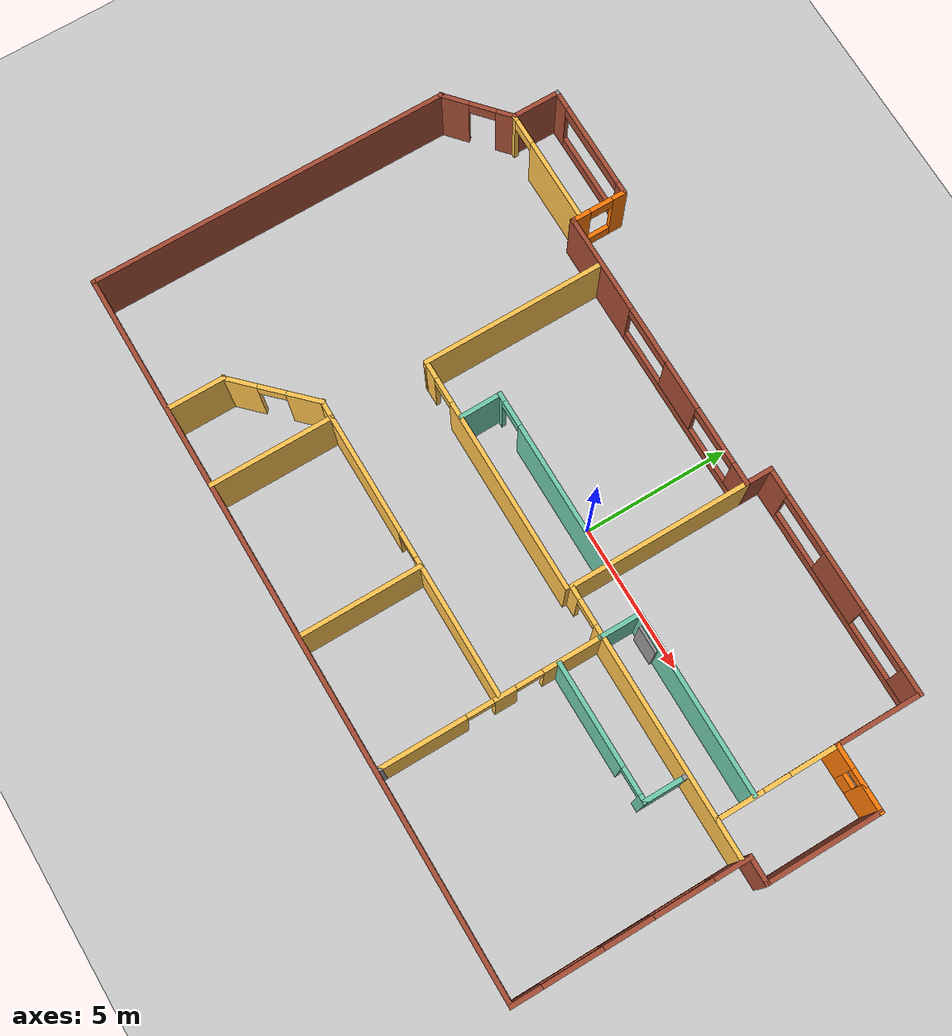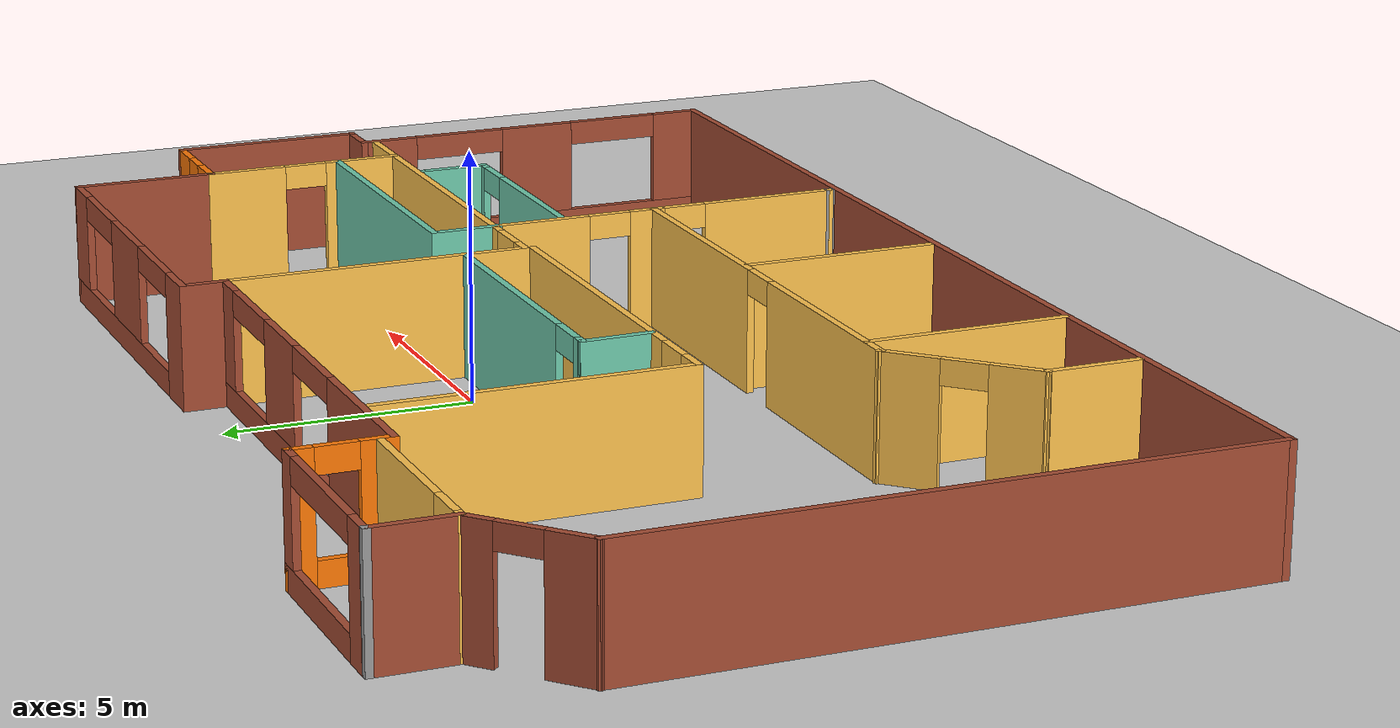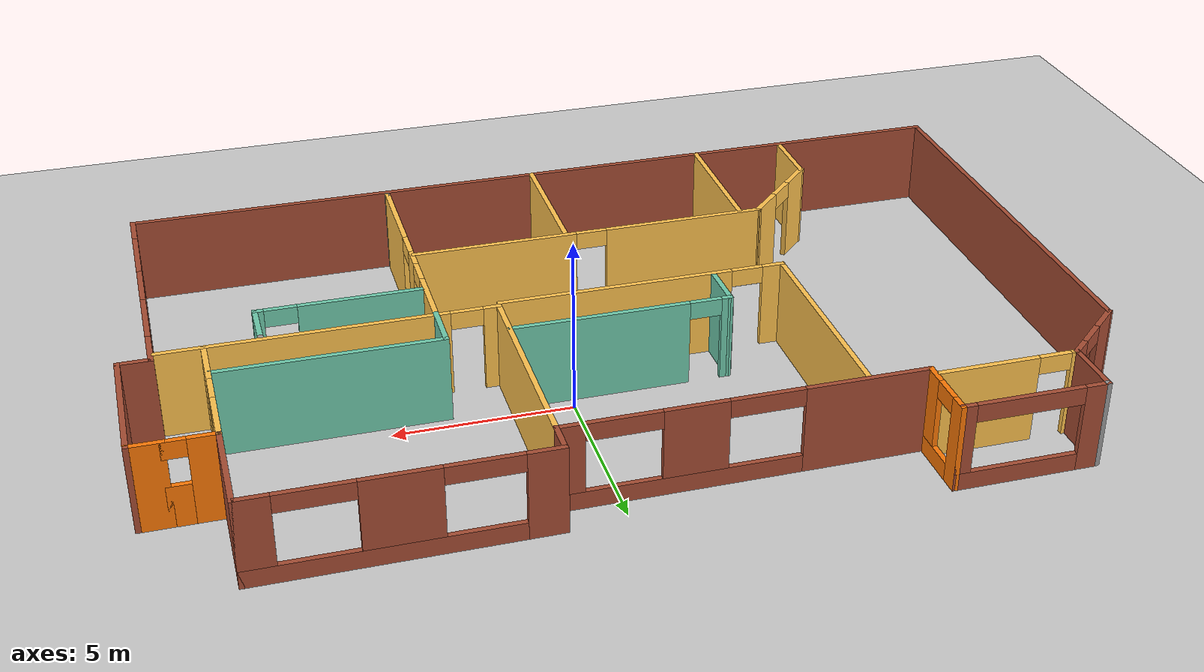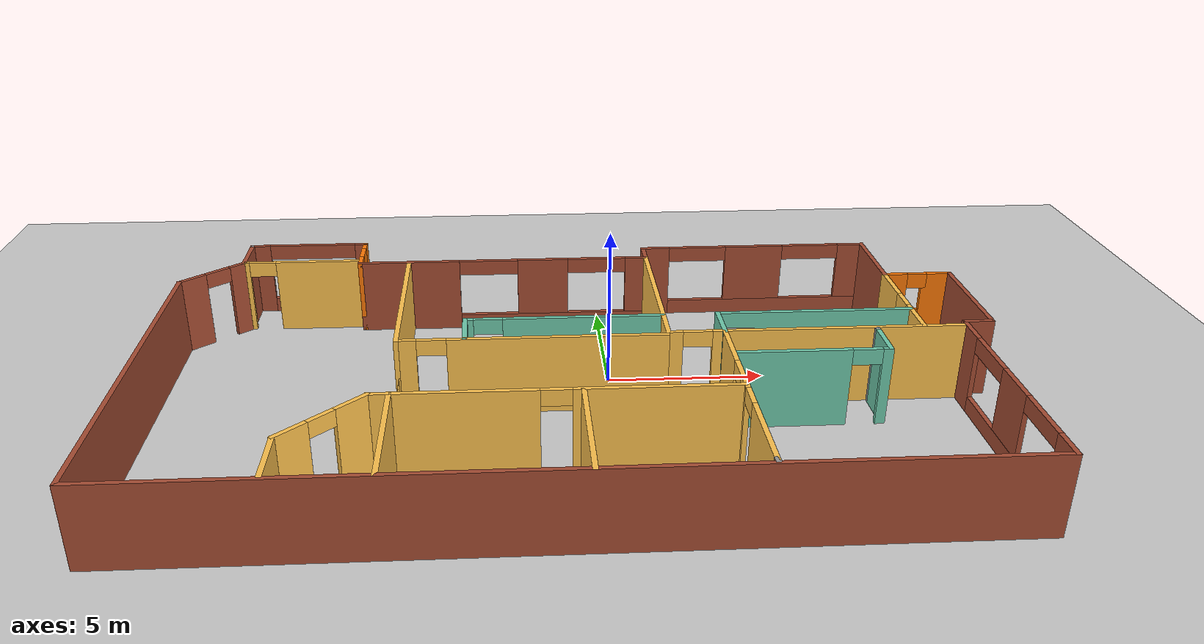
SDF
<sdf version="1.6">
 <world name="default">
  <model name="ground_plane">
   <static>1</static>
   <link name="link">
    <collision name="collision">
     <geometry><plane><normal>0 0 1</normal><size>100 100</size></plane></geometry>
     <surface><friction><ode><mu>100</mu><mu2>50</mu2></ode></friction></surface>
    </collision>
    <visual name="visual">
     <cast_shadows>0</cast_shadows>
     <geometry><plane><normal>0 0 1</normal><size>100 100</size></plane></geometry>
     <material>
      <script><uri>file://media/materials/scripts/gazebo.material</uri><name>Gazebo/Grey</name></script>
     </material>
    </visual>
   </link>
  </model>
  <model name="building">
   <pose>-1.18048 -1.54678 0 0 -0 0</pose>
   <link name="Door_9">
    <collision name="Door_9_Collision">
     <geometry><box><size>0.9 0.17 2</size></box></geometry>
     <pose>0 0 1 0 -0 0</pose>
    </collision>
    <visual name="Door_9_Visual">
     <pose>0 0 1 0 -0 0</pose>
     <geometry><box><size>0.9 0.17 2</size></box></geometry>
     <material>
      <script><uri>file://media/materials/scripts/gazebo.material</uri><name>Gazebo/Grey</name></script>
     </material>
    </visual>
    <pose>5.24635 1.02928 0 0 -0 0</pose>
   </link>
   <link name="Wall_10">
    <collision name="Wall_10_Collision">
     <geometry><box><size>1 0.15 2.5</size></box></geometry>
     <pose>0 0 1.25 0 -0 0</pose>
    </collision>
    <visual name="Wall_10_Visual">
     <pose>0 0 1.25 0 -0 0</pose>
     <geometry><box><size>1 0.15 2.5</size></box></geometry>
     <material>
      <script><uri>file://media/materials/scripts/gazebo.material</uri><name>Gazebo/Grey</name></script>
      <ambient>0.996078 0.47451 0.0196078 1</ambient>
     </material>
     <meta><layer>0</layer></meta>
    </visual>
    <pose>12.4404 3.92519 0 0 -0 0</pose>
   </link>
   <link name="Wall_11">
    <collision name="Wall_11_Collision">
     <geometry><box><size>4 0.15 2.5</size></box></geometry>
     <pose>0 0 1.25 0 -0 0</pose>
    </collision>
    <visual name="Wall_11_Visual">
     <pose>0 0 1.25 0 -0 0</pose>
     <geometry><box><size>4 0.15 2.5</size></box></geometry>
     <material>
      <script><uri>file://media/materials/scripts/gazebo.material</uri><name>Gazebo/Bricks</name></script>
      <ambient>0.996078 0.47451 0.0196078 1</ambient>
     </material>
     <meta><layer>0</layer></meta>
    </visual>
    <pose>12.8654 2.00019 0 0 0 -1.5708</pose>
   </link>
   <link name="Wall_12">
    <collision name="Wall_12_Collision">
     <geometry><box><size>1 0.15 2.5</size></box></geometry>
     <pose>0 0 1.25 0 -0 0</pose>
    </collision>
    <visual name="Wall_12_Visual">
     <pose>0 0 1.25 0 -0 0</pose>
     <geometry><box><size>1 0.15 2.5</size></box></geometry>
     <material>
      <script><uri>file://media/materials/scripts/gazebo.material</uri><name>Gazebo/Bricks</name></script>
      <ambient>0.996078 0.47451 0.0196078 1</ambient>
     </material>
     <meta><layer>0</layer></meta>
    </visual>
    <pose>12.4404 0.075189 0 0 -0 3.14159</pose>
   </link>
   <link name="Wall_13">
    <pose>12.0154 -3.84981 0 0 0 -1.5708</pose>
    <visual name="Wall_13_Visual_0">
     <pose>-3.35895 0 1.25 0 -0 0</pose>
     <geometry><box><size>1.28209 0.15 2.5</size></box></geometry>
     <material>
      <script><uri>file://media/materials/scripts/gazebo.material</uri><name>Gazebo/Bricks</name></script>
      <ambient>0.996078 0.47451 0.0196078 1</ambient>
     </material>
     <meta><layer>0</layer></meta>
    </visual>
    <collision name="Wall_13_Collision_0">
     <geometry><box><size>1.28209 0.15 2.5</size></box></geometry>
     <pose>-3.35895 0 1.25 0 -0 0</pose>
    </collision>
    <visual name="Wall_13_Visual_1">
     <pose>0.641045 0 0.25 0 -0 0</pose>
     <geometry><box><size>6.71791 0.15 0.5</size></box></geometry>
     <material>
      <script><uri>file://media/materials/scripts/gazebo.material</uri><name>Gazebo/Bricks</name></script>
      <ambient>0.996078 0.47451 0.0196078 1</ambient>
     </material>
     <meta><layer>0</layer></meta>
    </visual>
    <collision name="Wall_13_Collision_1">
     <geometry><box><size>6.71791 0.15 0.5</size></box></geometry>
     <pose>0.641045 0 0.25 0 -0 0</pose>
    </collision>
    <visual name="Wall_13_Visual_2">
     <pose>0.102981 0 1.5 0 -0 0</pose>
     <geometry><box><size>1.64178 0.15 2</size></box></geometry>
     <material>
      <script><uri>file://media/materials/scripts/gazebo.material</uri><name>Gazebo/Bricks</name></script>
      <ambient>0.996078 0.47451 0.0196078 1</ambient>
     </material>
     <meta><layer>0</layer></meta>
    </visual>
    <collision name="Wall_13_Collision_2">
     <geometry><box><size>1.64178 0.15 2</size></box></geometry>
     <pose>0.102981 0 1.5 0 -0 0</pose>
    </collision>
    <visual name="Wall_13_Visual_3">
     <pose>3.46194 0 1.5 0 -0 0</pose>
     <geometry><box><size>1.07613 0.15 2</size></box></geometry>
     <material>
      <script><uri>file://media/materials/scripts/gazebo.material</uri><name>Gazebo/Bricks</name></script>
      <ambient>0.996078 0.47451 0.0196078 1</ambient>
     </material>
     <meta><layer>0</layer></meta>
    </visual>
    <collision name="Wall_13_Collision_3">
     <geometry><box><size>1.07613 0.15 2</size></box></geometry>
     <pose>3.46194 0 1.5 0 -0 0</pose>
    </collision>
    <visual name="Wall_13_Visual_4">
     <pose>-1.71791 0 2.25 0 -0 0</pose>
     <geometry><box><size>2 0.15 0.5</size></box></geometry>
     <material>
      <script><uri>file://media/materials/scripts/gazebo.material</uri><name>Gazebo/Bricks</name></script>
      <ambient>0.996078 0.47451 0.0196078 1</ambient>
     </material>
     <meta><layer>0</layer></meta>
    </visual>
    <collision name="Wall_13_Collision_4">
     <geometry><box><size>2 0.15 0.5</size></box></geometry>
     <pose>-1.71791 0 2.25 0 -0 0</pose>
    </collision>
    <visual name="Wall_13_Visual_5">
     <pose>1.92387 0 2.25 0 -0 0</pose>
     <geometry><box><size>2 0.15 0.5</size></box></geometry>
     <material>
      <script><uri>file://media/materials/scripts/gazebo.material</uri><name>Gazebo/Bricks</name></script>
      <ambient>0.996078 0.47451 0.0196078 1</ambient>
     </material>
     <meta><layer>0</layer></meta>
    </visual>
    <collision name="Wall_13_Collision_5">
     <geometry><box><size>2 0.15 0.5</size></box></geometry>
     <pose>1.92387 0 2.25 0 -0 0</pose>
    </collision>
   </link>
   <link name="Wall_14">
    <collision name="Wall_14_Collision">
     <geometry><box><size>25 0.15 2.5</size></box></geometry>
     <pose>0 0 1.25 0 -0 0</pose>
    </collision>
    <visual name="Wall_14_Visual">
     <pose>0 0 1.25 0 -0 0</pose>
     <geometry><box><size>25 0.15 2.5</size></box></geometry>
     <material>
      <script><uri>file://media/materials/scripts/gazebo.material</uri><name>Gazebo/Bricks</name></script>
      <ambient>0.996078 0.47451 0.0196078 1</ambient>
     </material>
     <meta><layer>0</layer></meta>
    </visual>
    <pose>-0.409386 -7.775 0 0 0 -3.14158</pose>
   </link>
   <link name="Wall_15">
    <collision name="Wall_15_Collision">
     <geometry><box><size>12.5 0.15 2.5</size></box></geometry>
     <pose>0 0 1.25 0 -0 0</pose>
    </collision>
    <visual name="Wall_15_Visual">
     <pose>0 0 1.25 0 -0 0</pose>
     <geometry><box><size>12.5 0.15 2.5</size></box></geometry>
     <material>
      <script><uri>file://media/materials/scripts/gazebo.material</uri><name>Gazebo/Bricks</name></script>
      <ambient>0.996078 0.47451 0.0196078 1</ambient>
     </material>
     <meta><layer>0</layer></meta>
    </visual>
    <pose>-12.8344 -1.6 0 0 -0 1.57083</pose>
   </link>
   <link name="Wall_18">
    <collision name="Wall_18_Collision">
     <geometry><box><size>0.15 0.15 2.5</size></box></geometry>
     <pose>0 0 1.25 0 -0 0</pose>
    </collision>
    <visual name="Wall_18_Visual">
     <pose>0 0 1.25 0 -0 0</pose>
     <geometry><box><size>0.15 0.15 2.5</size></box></geometry>
     <material>
      <script><uri>file://media/materials/scripts/gazebo.material</uri><name>Gazebo/Grey</name></script>
      <ambient>1 1 1 1</ambient>
     </material>
     <meta><layer>0</layer></meta>
    </visual>
    <pose>-11.0156 7.76619 0 0 -0 0</pose>
   </link>
   <link name="Wall_2">
    <pose>-8.95963 7.77519 0 0 -0 0</pose>
    <visual name="Wall_2_Visual_0">
     <pose>-1.7146 0 1.25 0 -0 0</pose>
     <geometry><box><size>0.570799 0.15 2.5</size></box></geometry>
     <material>
      <script><uri>file://media/materials/scripts/gazebo.material</uri><name>Gazebo/Bricks</name></script>
      <ambient>0.996078 0.47451 0.0196078 1</ambient>
     </material>
     <meta><layer>0</layer></meta>
    </visual>
    <collision name="Wall_2_Collision_0">
     <geometry><box><size>0.570799 0.15 2.5</size></box></geometry>
     <pose>-1.7146 0 1.25 0 -0 0</pose>
    </collision>
    <visual name="Wall_2_Visual_1">
     <pose>0.285399 0 0.25 0 -0 0</pose>
     <geometry><box><size>3.4292 0.15 0.5</size></box></geometry>
     <material>
      <script><uri>file://media/materials/scripts/gazebo.material</uri><name>Gazebo/Bricks</name></script>
      <ambient>0.996078 0.47451 0.0196078 1</ambient>
     </material>
     <meta><layer>0</layer></meta>
    </visual>
    <collision name="Wall_2_Collision_1">
     <geometry><box><size>3.4292 0.15 0.5</size></box></geometry>
     <pose>0.285399 0 0.25 0 -0 0</pose>
    </collision>
    <visual name="Wall_2_Visual_2">
     <pose>1.7754 0 1.5 0 -0 0</pose>
     <geometry><box><size>0.449201 0.15 2</size></box></geometry>
     <material>
      <script><uri>file://media/materials/scripts/gazebo.material</uri><name>Gazebo/Bricks</name></script>
      <ambient>0.996078 0.47451 0.0196078 1</ambient>
     </material>
     <meta><layer>0</layer></meta>
    </visual>
    <collision name="Wall_2_Collision_2">
     <geometry><box><size>0.449201 0.15 2</size></box></geometry>
     <pose>1.7754 0 1.5 0 -0 0</pose>
    </collision>
    <visual name="Wall_2_Visual_3">
     <pose>0.060799 0 2.25 0 -0 0</pose>
     <geometry><box><size>2.98 0.15 0.5</size></box></geometry>
     <material>
      <script><uri>file://media/materials/scripts/gazebo.material</uri><name>Gazebo/Bricks</name></script>
      <ambient>0.996078 0.47451 0.0196078 1</ambient>
     </material>
     <meta><layer>0</layer></meta>
    </visual>
    <collision name="Wall_2_Collision_3">
     <geometry><box><size>2.98 0.15 0.5</size></box></geometry>
     <pose>0.060799 0 2.25 0 -0 0</pose>
    </collision>
   </link>
   <link name="Wall_21">
    <collision name="Wall_21_Collision">
     <geometry><box><size>1.72887 0.15 2.5</size></box></geometry>
     <pose>0 0 1.25 0 -0 0</pose>
    </collision>
    <visual name="Wall_21_Visual">
     <pose>0 0 1.25 0 -0 0</pose>
     <geometry><box><size>1.72887 0.15 2.5</size></box></geometry>
     <material>
      <script><uri>file://media/materials/scripts/gazebo.material</uri><name>Gazebo/Bricks</name></script>
      <ambient>0.996078 0.47451 0.0196078 1</ambient>
     </material>
     <meta><layer>0</layer></meta>
    </visual>
    <pose>-11.0156 6.97669 0 0 0 -1.5708</pose>
   </link>
   <link name="Wall_22">
    <pose>-11.9251 5.38119 0 0 0 -2.41645</pose>
    <visual name="Wall_22_Visual_0">
     <pose>-0.957133 0 1.25 0 -0 0</pose>
     <geometry><box><size>0.665888 0.15 2.5</size></box></geometry>
     <material>
      <script><uri>file://media/materials/scripts/gazebo.material</uri><name>Gazebo/Bricks</name></script>
      <ambient>0.996078 0.47451 0.0196078 1</ambient>
     </material>
     <meta><layer>0</layer></meta>
    </visual>
    <collision name="Wall_22_Collision_0">
     <geometry><box><size>0.665888 0.15 2.5</size></box></geometry>
     <pose>-0.957133 0 1.25 0 -0 0</pose>
    </collision>
    <visual name="Wall_22_Visual_1">
     <pose>0.782944 0 1.25 0 -0 0</pose>
     <geometry><box><size>1.01427 0.15 2.5</size></box></geometry>
     <material>
      <script><uri>file://media/materials/scripts/gazebo.material</uri><name>Gazebo/Bricks</name></script>
      <ambient>0.996078 0.47451 0.0196078 1</ambient>
     </material>
     <meta><layer>0</layer></meta>
    </visual>
    <collision name="Wall_22_Collision_1">
     <geometry><box><size>1.01427 0.15 2.5</size></box></geometry>
     <pose>0.782944 0 1.25 0 -0 0</pose>
    </collision>
    <visual name="Wall_22_Visual_2">
     <pose>-0.174189 0 2.25 0 -0 0</pose>
     <geometry><box><size>0.9 0.15 0.5</size></box></geometry>
     <material>
      <script><uri>file://media/materials/scripts/gazebo.material</uri><name>Gazebo/Bricks</name></script>
      <ambient>0.996078 0.47451 0.0196078 1</ambient>
     </material>
     <meta><layer>0</layer></meta>
    </visual>
    <collision name="Wall_22_Collision_2">
     <geometry><box><size>0.9 0.15 0.5</size></box></geometry>
     <pose>-0.174189 0 2.25 0 -0 0</pose>
    </collision>
   </link>
   <link name="Wall_24">
    <collision name="Wall_24_Collision">
     <geometry><box><size>6.25 0.15 2.5</size></box></geometry>
     <pose>0 0 1.25 0 -0 0</pose>
    </collision>
    <visual name="Wall_24_Visual">
     <pose>0 0 1.25 0 -0 0</pose>
     <geometry><box><size>6.25 0.15 2.5</size></box></geometry>
     <material>
      <script><uri>file://media/materials/scripts/gazebo.material</uri><name>Gazebo/Grey</name></script>
      <ambient>1 0.764706 0.305882 1</ambient>
     </material>
     <meta><layer>0</layer></meta>
    </visual>
    <pose>2.81537 2.87519 0 0 0 -1.5708</pose>
   </link>
   <link name="Wall_25">
    <pose>7.36561 -0.174999 0 0 0 -4.1e-05</pose>
    <visual name="Wall_25_Visual_0">
     <pose>-4.36759 0 1.25 0 -0 0</pose>
     <geometry><box><size>0.514816 0.15 2.5</size></box></geometry>
     <material>
      <script><uri>file://media/materials/scripts/gazebo.material</uri><name>Gazebo/Grey</name></script>
      <ambient>1 0.764706 0.305882 1</ambient>
     </material>
     <meta><layer>0</layer></meta>
    </visual>
    <collision name="Wall_25_Collision_0">
     <geometry><box><size>0.514816 0.15 2.5</size></box></geometry>
     <pose>-4.36759 0 1.25 0 -0 0</pose>
    </collision>
    <visual name="Wall_25_Visual_1">
     <pose>0.707408 0 1.25 0 -0 0</pose>
     <geometry><box><size>7.83518 0.15 2.5</size></box></geometry>
     <material>
      <script><uri>file://media/materials/scripts/gazebo.material</uri><name>Gazebo/Grey</name></script>
      <ambient>1 0.764706 0.305882 1</ambient>
     </material>
     <meta><layer>0</layer></meta>
    </visual>
    <collision name="Wall_25_Collision_1">
     <geometry><box><size>7.83518 0.15 2.5</size></box></geometry>
     <pose>0.707408 0 1.25 0 -0 0</pose>
    </collision>
    <visual name="Wall_25_Visual_2">
     <pose>-3.66018 0 2.25 0 -0 0</pose>
     <geometry><box><size>0.9 0.15 0.5</size></box></geometry>
     <material>
      <script><uri>file://media/materials/scripts/gazebo.material</uri><name>Gazebo/Grey</name></script>
      <ambient>1 0.764706 0.305882 1</ambient>
     </material>
     <meta><layer>0</layer></meta>
    </visual>
    <collision name="Wall_25_Collision_2">
     <geometry><box><size>0.9 0.15 0.5</size></box></geometry>
     <pose>-3.66018 0 2.25 0 -0 0</pose>
    </collision>
   </link>
   <link name="Wall_27">
    <collision name="Wall_27_Collision">
     <geometry><box><size>6.25 0.15 2.5</size></box></geometry>
     <pose>0 0 1.25 0 -0 0</pose>
    </collision>
    <visual name="Wall_27_Visual">
     <pose>0 0 1.25 0 -0 0</pose>
     <geometry><box><size>6.25 0.15 2.5</size></box></geometry>
     <material>
      <script><uri>file://media/materials/scripts/gazebo.material</uri><name>Gazebo/Grey</name></script>
      <ambient>1 0.764706 0.305882 1</ambient>
     </material>
     <meta><layer>0</layer></meta>
    </visual>
    <pose>-5.35916 2.72749 0 0 0 -1.5708</pose>
   </link>
   <link name="Wall_28">
    <pose>-1.29552 -0.32251 0 0 -0 0</pose>
    <visual name="Wall_28_Visual_0">
     <pose>-3.79542 0 1.25 0 -0 0</pose>
     <geometry><box><size>0.659156 0.15 2.5</size></box></geometry>
     <material>
      <script><uri>file://media/materials/scripts/gazebo.material</uri><name>Gazebo/Grey</name></script>
      <ambient>1 0.764706 0.305882 1</ambient>
     </material>
     <meta><layer>0</layer></meta>
    </visual>
    <collision name="Wall_28_Collision_0">
     <geometry><box><size>0.659156 0.15 2.5</size></box></geometry>
     <pose>-3.79542 0 1.25 0 -0 0</pose>
    </collision>
    <visual name="Wall_28_Visual_1">
     <pose>0.779578 0 1.25 0 -0 0</pose>
     <geometry><box><size>6.69084 0.15 2.5</size></box></geometry>
     <material>
      <script><uri>file://media/materials/scripts/gazebo.material</uri><name>Gazebo/Grey</name></script>
      <ambient>1 0.764706 0.305882 1</ambient>
     </material>
     <meta><layer>0</layer></meta>
    </visual>
    <collision name="Wall_28_Collision_1">
     <geometry><box><size>6.69084 0.15 2.5</size></box></geometry>
     <pose>0.779578 0 1.25 0 -0 0</pose>
    </collision>
    <visual name="Wall_28_Visual_2">
     <pose>-3.01584 0 2.25 0 -0 0</pose>
     <geometry><box><size>0.9 0.15 0.5</size></box></geometry>
     <material>
      <script><uri>file://media/materials/scripts/gazebo.material</uri><name>Gazebo/Grey</name></script>
      <ambient>1 0.764706 0.305882 1</ambient>
     </material>
     <meta><layer>0</layer></meta>
    </visual>
    <collision name="Wall_28_Collision_2">
     <geometry><box><size>0.9 0.15 0.5</size></box></geometry>
     <pose>-3.01584 0 2.25 0 -0 0</pose>
    </collision>
   </link>
   <link name="Wall_3">
    <pose>-7.03463 6.85019 0 0 0 -1.5708</pose>
    <visual name="Wall_3_Visual_0">
     <pose>-0.742492 0 1.25 0 -0 0</pose>
     <geometry><box><size>0.515016 0.15 2.5</size></box></geometry>
     <material>
      <script><uri>file://media/materials/scripts/gazebo.material</uri><name>Gazebo/Grey</name></script>
      <ambient>0.996078 0.47451 0.0196078 1</ambient>
     </material>
     <meta><layer>0</layer></meta>
    </visual>
    <collision name="Wall_3_Collision_0">
     <geometry><box><size>0.515016 0.15 2.5</size></box></geometry>
     <pose>-0.742492 0 1.25 0 -0 0</pose>
    </collision>
    <visual name="Wall_3_Visual_1">
     <pose>0.257508 0 0.25 0 -0 0</pose>
     <geometry><box><size>1.48498 0.15 0.5</size></box></geometry>
     <material>
      <script><uri>file://media/materials/scripts/gazebo.material</uri><name>Gazebo/Grey</name></script>
      <ambient>0.996078 0.47451 0.0196078 1</ambient>
     </material>
     <meta><layer>0</layer></meta>
    </visual>
    <collision name="Wall_3_Collision_1">
     <geometry><box><size>1.48498 0.15 0.5</size></box></geometry>
     <pose>0.257508 0 0.25 0 -0 0</pose>
    </collision>
    <visual name="Wall_3_Visual_2">
     <pose>0.657508 0 1.5 0 -0 0</pose>
     <geometry><box><size>0.684984 0.15 2</size></box></geometry>
     <material>
      <script><uri>file://media/materials/scripts/gazebo.material</uri><name>Gazebo/Grey</name></script>
      <ambient>0.996078 0.47451 0.0196078 1</ambient>
     </material>
     <meta><layer>0</layer></meta>
    </visual>
    <collision name="Wall_3_Collision_2">
     <geometry><box><size>0.684984 0.15 2</size></box></geometry>
     <pose>0.657508 0 1.5 0 -0 0</pose>
    </collision>
    <visual name="Wall_3_Visual_3">
     <pose>-0.084984 0 2.25 0 -0 0</pose>
     <geometry><box><size>0.8 0.15 0.5</size></box></geometry>
     <material>
      <script><uri>file://media/materials/scripts/gazebo.material</uri><name>Gazebo/Grey</name></script>
      <ambient>0.996078 0.47451 0.0196078 1</ambient>
     </material>
     <meta><layer>0</layer></meta>
    </visual>
    <collision name="Wall_3_Collision_3">
     <geometry><box><size>0.8 0.15 0.5</size></box></geometry>
     <pose>-0.084984 0 2.25 0 -0 0</pose>
    </collision>
   </link>
   <link name="Wall_30">
    <pose>4.52737 -3.91681 0 0 0 -1.5708</pose>
    <visual name="Wall_30_Visual_0">
     <pose>-2.73062 0 1.25 0 -0 0</pose>
     <geometry><box><size>2.03875 0.15 2.5</size></box></geometry>
     <material>
      <script><uri>file://media/materials/scripts/gazebo.material</uri><name>Gazebo/Grey</name></script>
      <ambient>1 0.764706 0.305882 1</ambient>
     </material>
     <meta><layer>0</layer></meta>
    </visual>
    <collision name="Wall_30_Collision_0">
     <geometry><box><size>2.03875 0.15 2.5</size></box></geometry>
     <pose>-2.73062 0 1.25 0 -0 0</pose>
    </collision>
    <visual name="Wall_30_Visual_1">
     <pose>-0.433439 0 1.25 0 -0 0</pose>
     <geometry><box><size>0.755616 0.15 2.5</size></box></geometry>
     <material>
      <script><uri>file://media/materials/scripts/gazebo.material</uri><name>Gazebo/Grey</name></script>
      <ambient>1 0.764706 0.305882 1</ambient>
     </material>
     <meta><layer>0</layer></meta>
    </visual>
    <collision name="Wall_30_Collision_1">
     <geometry><box><size>0.755616 0.15 2.5</size></box></geometry>
     <pose>-0.433439 0 1.25 0 -0 0</pose>
    </collision>
    <visual name="Wall_30_Visual_2">
     <pose>2.29718 0 1.25 0 -0 0</pose>
     <geometry><box><size>2.90563 0.15 2.5</size></box></geometry>
     <material>
      <script><uri>file://media/materials/scripts/gazebo.material</uri><name>Gazebo/Grey</name></script>
      <ambient>1 0.764706 0.305882 1</ambient>
     </material>
     <meta><layer>0</layer></meta>
    </visual>
    <collision name="Wall_30_Collision_2">
     <geometry><box><size>2.90563 0.15 2.5</size></box></geometry>
     <pose>2.29718 0 1.25 0 -0 0</pose>
    </collision>
    <visual name="Wall_30_Visual_3">
     <pose>-1.26125 0 2.25 0 -0 0</pose>
     <geometry><box><size>0.9 0.15 0.5</size></box></geometry>
     <material>
      <script><uri>file://media/materials/scripts/gazebo.material</uri><name>Gazebo/Grey</name></script>
      <ambient>1 0.764706 0.305882 1</ambient>
     </material>
     <meta><layer>0</layer></meta>
    </visual>
    <collision name="Wall_30_Collision_3">
     <geometry><box><size>0.9 0.15 0.5</size></box></geometry>
     <pose>-1.26125 0 2.25 0 -0 0</pose>
    </collision>
    <visual name="Wall_30_Visual_4">
     <pose>0.394369 0 2.25 0 -0 0</pose>
     <geometry><box><size>0.9 0.15 0.5</size></box></geometry>
     <material>
      <script><uri>file://media/materials/scripts/gazebo.material</uri><name>Gazebo/Grey</name></script>
      <ambient>1 0.764706 0.305882 1</ambient>
     </material>
     <meta><layer>0</layer></meta>
    </visual>
    <collision name="Wall_30_Collision_4">
     <geometry><box><size>0.9 0.15 0.5</size></box></geometry>
     <pose>0.394369 0 2.25 0 -0 0</pose>
    </collision>
   </link>
   <link name="Wall_32">
    <collision name="Wall_32_Collision">
     <geometry><box><size>0.25 0.15 2.5</size></box></geometry>
     <pose>0 0 1.25 0 -0 0</pose>
    </collision>
    <visual name="Wall_32_Visual">
     <pose>0 0 1.25 0 -0 0</pose>
     <geometry><box><size>0.25 0.15 2.5</size></box></geometry>
     <material>
      <script><uri>file://media/materials/scripts/gazebo.material</uri><name>Gazebo/Grey</name></script>
      <ambient>1 1 1 1</ambient>
     </material>
     <meta><layer>0</layer></meta>
    </visual>
    <pose>4.52743 -7.64189 0 0 0 -1.56959</pose>
   </link>
   <link name="Wall_34">
    <pose>-0.701627 -3.64881 0 0 -0 3.14159</pose>
    <visual name="Wall_34_Visual_0">
     <pose>-2.83618 0 1.25 0 -0 0</pose>
     <geometry><box><size>4.82764 0.15 2.5</size></box></geometry>
     <material>
      <script><uri>file://media/materials/scripts/gazebo.material</uri><name>Gazebo/Grey</name></script>
      <ambient>1 0.764706 0.305882 1</ambient>
     </material>
     <meta><layer>0</layer></meta>
    </visual>
    <collision name="Wall_34_Collision_0">
     <geometry><box><size>4.82764 0.15 2.5</size></box></geometry>
     <pose>-2.83618 0 1.25 0 -0 0</pose>
    </collision>
    <visual name="Wall_34_Visual_1">
     <pose>2.86382 0 1.25 0 -0 0</pose>
     <geometry><box><size>4.77236 0.15 2.5</size></box></geometry>
     <material>
      <script><uri>file://media/materials/scripts/gazebo.material</uri><name>Gazebo/Grey</name></script>
      <ambient>1 0.764706 0.305882 1</ambient>
     </material>
     <meta><layer>0</layer></meta>
    </visual>
    <collision name="Wall_34_Collision_1">
     <geometry><box><size>4.77236 0.15 2.5</size></box></geometry>
     <pose>2.86382 0 1.25 0 -0 0</pose>
    </collision>
    <visual name="Wall_34_Visual_2">
     <pose>0.02764 0 2.25 0 -0 0</pose>
     <geometry><box><size>0.9 0.15 0.5</size></box></geometry>
     <material>
      <script><uri>file://media/materials/scripts/gazebo.material</uri><name>Gazebo/Grey</name></script>
      <ambient>1 0.764706 0.305882 1</ambient>
     </material>
     <meta><layer>0</layer></meta>
    </visual>
    <collision name="Wall_34_Collision_2">
     <geometry><box><size>0.9 0.15 0.5</size></box></geometry>
     <pose>0.02764 0 2.25 0 -0 0</pose>
    </collision>
   </link>
   <link name="Wall_35">
    <pose>-6.97252 -4.74494 0 0 0 -2.35608</pose>
    <visual name="Wall_35_Visual_0">
     <pose>-1.02165 0 1.25 0 -0 0</pose>
     <geometry><box><size>1.20669 0.15 2.5</size></box></geometry>
     <material>
      <script><uri>file://media/materials/scripts/gazebo.material</uri><name>Gazebo/Grey</name></script>
      <ambient>1 0.764706 0.305882 1</ambient>
     </material>
     <meta><layer>0</layer></meta>
    </visual>
    <collision name="Wall_35_Collision_0">
     <geometry><box><size>1.20669 0.15 2.5</size></box></geometry>
     <pose>-1.02165 0 1.25 0 -0 0</pose>
    </collision>
    <visual name="Wall_35_Visual_1">
     <pose>1.05335 0 1.25 0 -0 0</pose>
     <geometry><box><size>1.14331 0.15 2.5</size></box></geometry>
     <material>
      <script><uri>file://media/materials/scripts/gazebo.material</uri><name>Gazebo/Grey</name></script>
      <ambient>1 0.764706 0.305882 1</ambient>
     </material>
     <meta><layer>0</layer></meta>
    </visual>
    <collision name="Wall_35_Collision_1">
     <geometry><box><size>1.14331 0.15 2.5</size></box></geometry>
     <pose>1.05335 0 1.25 0 -0 0</pose>
    </collision>
    <visual name="Wall_35_Visual_2">
     <pose>0.031691 0 2.25 0 -0 0</pose>
     <geometry><box><size>0.9 0.15 0.5</size></box></geometry>
     <material>
      <script><uri>file://media/materials/scripts/gazebo.material</uri><name>Gazebo/Grey</name></script>
      <ambient>1 0.764706 0.305882 1</ambient>
     </material>
     <meta><layer>0</layer></meta>
    </visual>
    <collision name="Wall_35_Collision_2">
     <geometry><box><size>0.9 0.15 0.5</size></box></geometry>
     <pose>0.031691 0 2.25 0 -0 0</pose>
    </collision>
   </link>
   <link name="Wall_36">
    <collision name="Wall_36_Collision">
     <geometry><box><size>2 0.15 2.5</size></box></geometry>
     <pose>0 0 1.25 0 -0 0</pose>
    </collision>
    <visual name="Wall_36_Visual">
     <pose>0 0 1.25 0 -0 0</pose>
     <geometry><box><size>2 0.15 2.5</size></box></geometry>
     <material>
      <script><uri>file://media/materials/scripts/gazebo.material</uri><name>Gazebo/Grey</name></script>
      <ambient>1 0.764706 0.305882 1</ambient>
     </material>
     <meta><layer>0</layer></meta>
    </visual>
    <pose>-8.06841 -6.76607 0 0 0 -1.5708</pose>
   </link>
   <link name="Wall_38">
    <collision name="Wall_38_Collision">
     <geometry><box><size>4.25 0.15 2.5</size></box></geometry>
     <pose>0 0 1.25 0 -0 0</pose>
    </collision>
    <visual name="Wall_38_Visual">
     <pose>0 0 1.25 0 -0 0</pose>
     <geometry><box><size>4.25 0.15 2.5</size></box></geometry>
     <material>
      <script><uri>file://media/materials/scripts/gazebo.material</uri><name>Gazebo/Grey</name></script>
      <ambient>1 0.764706 0.305882 1</ambient>
     </material>
     <meta><layer>0</layer></meta>
    </visual>
    <pose>-5.30163 -5.71081 0 0 0 -1.5708</pose>
   </link>
   <link name="Wall_4">
    <pose>-2.10963 5.92519 0 0 -0 0</pose>
    <visual name="Wall_4_Visual_0">
     <pose>-3.26273 0 1.25 0 -0 0</pose>
     <geometry><box><size>3.47454 0.15 2.5</size></box></geometry>
     <material>
      <script><uri>file://media/materials/scripts/gazebo.material</uri><name>Gazebo/Bricks</name></script>
      <ambient>0.996078 0.47451 0.0196078 1</ambient>
     </material>
     <meta><layer>0</layer></meta>
    </visual>
    <collision name="Wall_4_Collision_0">
     <geometry><box><size>3.47454 0.15 2.5</size></box></geometry>
     <pose>-3.26273 0 1.25 0 -0 0</pose>
    </collision>
    <visual name="Wall_4_Visual_1">
     <pose>1.73727 0 0.25 0 -0 0</pose>
     <geometry><box><size>6.52546 0.15 0.5</size></box></geometry>
     <material>
      <script><uri>file://media/materials/scripts/gazebo.material</uri><name>Gazebo/Bricks</name></script>
      <ambient>0.996078 0.47451 0.0196078 1</ambient>
     </material>
     <meta><layer>0</layer></meta>
    </visual>
    <collision name="Wall_4_Collision_1">
     <geometry><box><size>6.52546 0.15 0.5</size></box></geometry>
     <pose>1.73727 0 0.25 0 -0 0</pose>
    </collision>
    <visual name="Wall_4_Visual_2">
     <pose>1.34236 0 1.5 0 -0 0</pose>
     <geometry><box><size>1.73563 0.15 2</size></box></geometry>
     <material>
      <script><uri>file://media/materials/scripts/gazebo.material</uri><name>Gazebo/Bricks</name></script>
      <ambient>0.996078 0.47451 0.0196078 1</ambient>
     </material>
     <meta><layer>0</layer></meta>
    </visual>
    <collision name="Wall_4_Collision_2">
     <geometry><box><size>1.73563 0.15 2</size></box></geometry>
     <pose>1.34236 0 1.5 0 -0 0</pose>
    </collision>
    <visual name="Wall_4_Visual_3">
     <pose>4.60509 0 1.5 0 -0 0</pose>
     <geometry><box><size>0.789828 0.15 2</size></box></geometry>
     <material>
      <script><uri>file://media/materials/scripts/gazebo.material</uri><name>Gazebo/Bricks</name></script>
      <ambient>0.996078 0.47451 0.0196078 1</ambient>
     </material>
     <meta><layer>0</layer></meta>
    </visual>
    <collision name="Wall_4_Collision_3">
     <geometry><box><size>0.789828 0.15 2</size></box></geometry>
     <pose>4.60509 0 1.5 0 -0 0</pose>
    </collision>
    <visual name="Wall_4_Visual_4">
     <pose>-0.525461 0 2.25 0 -0 0</pose>
     <geometry><box><size>2 0.15 0.5</size></box></geometry>
     <material>
      <script><uri>file://media/materials/scripts/gazebo.material</uri><name>Gazebo/Bricks</name></script>
      <ambient>0.996078 0.47451 0.0196078 1</ambient>
     </material>
     <meta><layer>0</layer></meta>
    </visual>
    <collision name="Wall_4_Collision_4">
     <geometry><box><size>2 0.15 0.5</size></box></geometry>
     <pose>-0.525461 0 2.25 0 -0 0</pose>
    </collision>
    <visual name="Wall_4_Visual_5">
     <pose>3.21017 0 2.25 0 -0 0</pose>
     <geometry><box><size>2 0.15 0.5</size></box></geometry>
     <material>
      <script><uri>file://media/materials/scripts/gazebo.material</uri><name>Gazebo/Bricks</name></script>
      <ambient>0.996078 0.47451 0.0196078 1</ambient>
     </material>
     <meta><layer>0</layer></meta>
    </visual>
    <collision name="Wall_4_Collision_5">
     <geometry><box><size>2 0.15 0.5</size></box></geometry>
     <pose>3.21017 0 2.25 0 -0 0</pose>
    </collision>
   </link>
   <link name="Wall_40">
    <collision name="Wall_40_Collision">
     <geometry><box><size>4.25 0.15 2.5</size></box></geometry>
     <pose>0 0 1.25 0 -0 0</pose>
    </collision>
    <visual name="Wall_40_Visual">
     <pose>0 0 1.25 0 -0 0</pose>
     <geometry><box><size>4.25 0.15 2.5</size></box></geometry>
     <material>
      <script><uri>file://media/materials/scripts/gazebo.material</uri><name>Gazebo/Grey</name></script>
      <ambient>1 0.764706 0.305882 1</ambient>
     </material>
     <meta><layer>0</layer></meta>
    </visual>
    <pose>0.021373 -5.72281 0 0 0 -1.5708</pose>
   </link>
   <link name="Wall_42">
    <pose>10.6656 1.875 0 0 0 -1.57068</pose>
    <visual name="Wall_42_Visual_0">
     <pose>-1.27509 0 1.25 0 -0 0</pose>
     <geometry><box><size>1.69982 0.15 2.5</size></box></geometry>
     <material>
      <script><uri>file://media/materials/scripts/gazebo.material</uri><name>Gazebo/Grey</name></script>
      <ambient>1 0.764706 0.305882 1</ambient>
     </material>
     <meta><layer>0</layer></meta>
    </visual>
    <collision name="Wall_42_Collision_0">
     <geometry><box><size>1.69982 0.15 2.5</size></box></geometry>
     <pose>-1.27509 0 1.25 0 -0 0</pose>
    </collision>
    <visual name="Wall_42_Visual_1">
     <pose>1.29991 0 1.25 0 -0 0</pose>
     <geometry><box><size>1.65018 0.15 2.5</size></box></geometry>
     <material>
      <script><uri>file://media/materials/scripts/gazebo.material</uri><name>Gazebo/Grey</name></script>
      <ambient>1 0.764706 0.305882 1</ambient>
     </material>
     <meta><layer>0</layer></meta>
    </visual>
    <collision name="Wall_42_Collision_1">
     <geometry><box><size>1.65018 0.15 2.5</size></box></geometry>
     <pose>1.29991 0 1.25 0 -0 0</pose>
    </collision>
    <visual name="Wall_42_Visual_2">
     <pose>0.024819 0 2.25 0 -0 0</pose>
     <geometry><box><size>0.9 0.15 0.5</size></box></geometry>
     <material>
      <script><uri>file://media/materials/scripts/gazebo.material</uri><name>Gazebo/Grey</name></script>
      <ambient>1 0.764706 0.305882 1</ambient>
     </material>
     <meta><layer>0</layer></meta>
    </visual>
    <collision name="Wall_42_Collision_2">
     <geometry><box><size>0.9 0.15 0.5</size></box></geometry>
     <pose>0.024819 0 2.25 0 -0 0</pose>
    </collision>
   </link>
   <link name="Wall_49">
    <collision name="Wall_49_Collision">
     <geometry><box><size>0.15 0.15 2.5</size></box></geometry>
     <pose>0 0 1.25 0 -0 0</pose>
    </collision>
    <visual name="Wall_49_Visual">
     <pose>0 0 1.25 0 -0 0</pose>
     <geometry><box><size>0.15 0.15 2.5</size></box></geometry>
     <material>
      <script><uri>file://media/materials/scripts/gazebo.material</uri><name>Gazebo/Grey</name></script>
      <ambient>1 1 1 1</ambient>
     </material>
     <meta><layer>0</layer></meta>
    </visual>
    <pose>9.18137 -0.314811 0 0 -0 0</pose>
   </link>
   <link name="Wall_5">
    <collision name="Wall_5_Collision">
     <geometry><box><size>1 0.15 2.5</size></box></geometry>
     <pose>0 0 1.25 0 -0 0</pose>
    </collision>
    <visual name="Wall_5_Visual">
     <pose>0 0 1.25 0 -0 0</pose>
     <geometry><box><size>1 0.15 2.5</size></box></geometry>
     <material>
      <script><uri>file://media/materials/scripts/gazebo.material</uri><name>Gazebo/Bricks</name></script>
      <ambient>0.996078 0.47451 0.0196078 1</ambient>
     </material>
     <meta><layer>0</layer></meta>
    </visual>
    <pose>2.81537 6.35019 0 0 -0 1.5708</pose>
   </link>
   <link name="Wall_56">
    <collision name="Wall_56_Collision">
     <geometry><box><size>1.5 0.15 2.5</size></box></geometry>
     <pose>0 0 1.25 0 -0 0</pose>
    </collision>
    <visual name="Wall_56_Visual">
     <pose>0 0 1.25 0 -0 0</pose>
     <geometry><box><size>1.5 0.15 2.5</size></box></geometry>
     <material>
      <script><uri>file://media/materials/scripts/gazebo.material</uri><name>Gazebo/Grey</name></script>
      <ambient>0.435294 0.796078 0.67451 1</ambient>
     </material>
     <meta><layer>0</layer></meta>
    </visual>
    <pose>-3.32584 0.394189 0 0 -0 1.58593</pose>
   </link>
   <link name="Wall_58">
    <pose>-0.275843 1.06919 0 0 -0 0</pose>
    <visual name="Wall_58_Visual_0">
     <pose>-2.96525 0 1.25 0 -0 0</pose>
     <geometry><box><size>0.319491 0.15 2.5</size></box></geometry>
     <material>
      <script><uri>file://media/materials/scripts/gazebo.material</uri><name>Gazebo/Grey</name></script>
      <ambient>0.435294 0.796078 0.67451 1</ambient>
     </material>
     <meta><layer>0</layer></meta>
    </visual>
    <collision name="Wall_58_Collision_0">
     <geometry><box><size>0.319491 0.15 2.5</size></box></geometry>
     <pose>-2.96525 0 1.25 0 -0 0</pose>
    </collision>
    <visual name="Wall_58_Visual_1">
     <pose>0.609745 0 1.25 0 -0 0</pose>
     <geometry><box><size>5.03051 0.15 2.5</size></box></geometry>
     <material>
      <script><uri>file://media/materials/scripts/gazebo.material</uri><name>Gazebo/Grey</name></script>
      <ambient>0.435294 0.796078 0.67451 1</ambient>
     </material>
     <meta><layer>0</layer></meta>
    </visual>
    <collision name="Wall_58_Collision_1">
     <geometry><box><size>5.03051 0.15 2.5</size></box></geometry>
     <pose>0.609745 0 1.25 0 -0 0</pose>
    </collision>
    <visual name="Wall_58_Visual_2">
     <pose>-2.35551 0 2.25 0 -0 0</pose>
     <geometry><box><size>0.9 0.15 0.5</size></box></geometry>
     <material>
      <script><uri>file://media/materials/scripts/gazebo.material</uri><name>Gazebo/Grey</name></script>
      <ambient>0.435294 0.796078 0.67451 1</ambient>
     </material>
     <meta><layer>0</layer></meta>
    </visual>
    <collision name="Wall_58_Collision_2">
     <geometry><box><size>0.9 0.15 0.5</size></box></geometry>
     <pose>-2.35551 0 2.25 0 -0 0</pose>
    </collision>
   </link>
   <link name="Wall_6">
    <pose>6.74037 6.77519 0 0 -0 0</pose>
    <visual name="Wall_6_Visual_0">
     <pose>-3.49033 0 1.25 0 -0 0</pose>
     <geometry><box><size>1.01933 0.15 2.5</size></box></geometry>
     <material>
      <script><uri>file://media/materials/scripts/gazebo.material</uri><name>Gazebo/Bricks</name></script>
      <ambient>0.996078 0.47451 0.0196078 1</ambient>
     </material>
     <meta><layer>0</layer></meta>
    </visual>
    <collision name="Wall_6_Collision_0">
     <geometry><box><size>1.01933 0.15 2.5</size></box></geometry>
     <pose>-3.49033 0 1.25 0 -0 0</pose>
    </collision>
    <visual name="Wall_6_Visual_1">
     <pose>0.509666 0 0.25 0 -0 0</pose>
     <geometry><box><size>6.98067 0.15 0.5</size></box></geometry>
     <material>
      <script><uri>file://media/materials/scripts/gazebo.material</uri><name>Gazebo/Bricks</name></script>
      <ambient>0.996078 0.47451 0.0196078 1</ambient>
     </material>
     <meta><layer>0</layer></meta>
    </visual>
    <collision name="Wall_6_Collision_1">
     <geometry><box><size>6.98067 0.15 0.5</size></box></geometry>
     <pose>0.509666 0 0.25 0 -0 0</pose>
    </collision>
    <visual name="Wall_6_Visual_2">
     <pose>0.037578 0 1.5 0 -0 0</pose>
     <geometry><box><size>2.03649 0.15 2</size></box></geometry>
     <material>
      <script><uri>file://media/materials/scripts/gazebo.material</uri><name>Gazebo/Bricks</name></script>
      <ambient>0.996078 0.47451 0.0196078 1</ambient>
     </material>
     <meta><layer>0</layer></meta>
    </visual>
    <collision name="Wall_6_Collision_2">
     <geometry><box><size>2.03649 0.15 2</size></box></geometry>
     <pose>0.037578 0 1.5 0 -0 0</pose>
    </collision>
    <visual name="Wall_6_Visual_3">
     <pose>3.52791 0 1.5 0 -0 0</pose>
     <geometry><box><size>0.944175 0.15 2</size></box></geometry>
     <material>
      <script><uri>file://media/materials/scripts/gazebo.material</uri><name>Gazebo/Bricks</name></script>
      <ambient>0.996078 0.47451 0.0196078 1</ambient>
     </material>
     <meta><layer>0</layer></meta>
    </visual>
    <collision name="Wall_6_Collision_3">
     <geometry><box><size>0.944175 0.15 2</size></box></geometry>
     <pose>3.52791 0 1.5 0 -0 0</pose>
    </collision>
    <visual name="Wall_6_Visual_4">
     <pose>-1.98067 0 2.25 0 -0 0</pose>
     <geometry><box><size>2 0.15 0.5</size></box></geometry>
     <material>
      <script><uri>file://media/materials/scripts/gazebo.material</uri><name>Gazebo/Bricks</name></script>
      <ambient>0.996078 0.47451 0.0196078 1</ambient>
     </material>
     <meta><layer>0</layer></meta>
    </visual>
    <collision name="Wall_6_Collision_4">
     <geometry><box><size>2 0.15 0.5</size></box></geometry>
     <pose>-1.98067 0 2.25 0 -0 0</pose>
    </collision>
    <visual name="Wall_6_Visual_5">
     <pose>2.05583 0 2.25 0 -0 0</pose>
     <geometry><box><size>2 0.15 0.5</size></box></geometry>
     <material>
      <script><uri>file://media/materials/scripts/gazebo.material</uri><name>Gazebo/Bricks</name></script>
      <ambient>0.996078 0.47451 0.0196078 1</ambient>
     </material>
     <meta><layer>0</layer></meta>
    </visual>
    <collision name="Wall_6_Collision_5">
     <geometry><box><size>2 0.15 0.5</size></box></geometry>
     <pose>2.05583 0 2.25 0 -0 0</pose>
    </collision>
   </link>
   <link name="Wall_60">
    <collision name="Wall_60_Collision">
     <geometry><box><size>1.5 0.15 2.5</size></box></geometry>
     <pose>0 0 1.25 0 -0 0</pose>
    </collision>
    <visual name="Wall_60_Visual">
     <pose>0 0 1.25 0 -0 0</pose>
     <geometry><box><size>1.5 0.15 2.5</size></box></geometry>
     <material>
      <script><uri>file://media/materials/scripts/gazebo.material</uri><name>Gazebo/Grey</name></script>
      <ambient>0.435294 0.796078 0.67451 1</ambient>
     </material>
     <meta><layer>0</layer></meta>
    </visual>
    <pose>9.18137 -0.989811 0 0 0 -1.5708</pose>
   </link>
   <link name="Wall_61">
    <pose>6.88137 -1.66481 0 0 -0 3.14159</pose>
    <visual name="Wall_61_Visual_0">
     <pose>-2.21985 0 1.25 0 -0 0</pose>
     <geometry><box><size>0.310303 0.15 2.5</size></box></geometry>
     <material>
      <script><uri>file://media/materials/scripts/gazebo.material</uri><name>Gazebo/Grey</name></script>
      <ambient>0.435294 0.796078 0.67451 1</ambient>
     </material>
     <meta><layer>0</layer></meta>
    </visual>
    <collision name="Wall_61_Collision_0">
     <geometry><box><size>0.310303 0.15 2.5</size></box></geometry>
     <pose>-2.21985 0 1.25 0 -0 0</pose>
    </collision>
    <visual name="Wall_61_Visual_1">
     <pose>0.605152 0 1.25 0 -0 0</pose>
     <geometry><box><size>3.5397 0.15 2.5</size></box></geometry>
     <material>
      <script><uri>file://media/materials/scripts/gazebo.material</uri><name>Gazebo/Grey</name></script>
      <ambient>0.435294 0.796078 0.67451 1</ambient>
     </material>
     <meta><layer>0</layer></meta>
    </visual>
    <collision name="Wall_61_Collision_1">
     <geometry><box><size>3.5397 0.15 2.5</size></box></geometry>
     <pose>0.605152 0 1.25 0 -0 0</pose>
    </collision>
    <visual name="Wall_61_Visual_2">
     <pose>-1.6147 0 2.25 0 -0 0</pose>
     <geometry><box><size>0.9 0.15 0.5</size></box></geometry>
     <material>
      <script><uri>file://media/materials/scripts/gazebo.material</uri><name>Gazebo/Grey</name></script>
      <ambient>0.435294 0.796078 0.67451 1</ambient>
     </material>
     <meta><layer>0</layer></meta>
    </visual>
    <collision name="Wall_61_Collision_2">
     <geometry><box><size>0.9 0.15 0.5</size></box></geometry>
     <pose>-1.6147 0 2.25 0 -0 0</pose>
    </collision>
   </link>
   <link name="Wall_64">
    <collision name="Wall_64_Collision">
     <geometry><box><size>1.5 0.15 2.5</size></box></geometry>
     <pose>0 0 1.25 0 -0 0</pose>
    </collision>
    <visual name="Wall_64_Visual">
     <pose>0 0 1.25 0 -0 0</pose>
     <geometry><box><size>1.5 0.15 2.5</size></box></geometry>
     <material>
      <script><uri>file://media/materials/scripts/gazebo.material</uri><name>Gazebo/Grey</name></script>
      <ambient>0.435294 0.796078 0.67451 1</ambient>
     </material>
     <meta><layer>0</layer></meta>
    </visual>
    <pose>4.52737 0.433189 0 0 -0 1.5708</pose>
   </link>
   <link name="Wall_65">
    <collision name="Wall_65_Collision">
     <geometry><box><size>6.25 0.15 2.5</size></box></geometry>
     <pose>0 0 1.25 0 -0 0</pose>
    </collision>
    <visual name="Wall_65_Visual">
     <pose>0 0 1.25 0 -0 0</pose>
     <geometry><box><size>6.25 0.15 2.5</size></box></geometry>
     <material>
      <script><uri>file://media/materials/scripts/gazebo.material</uri><name>Gazebo/Grey</name></script>
      <ambient>0.435294 0.796078 0.67451 1</ambient>
     </material>
     <meta><layer>0</layer></meta>
    </visual>
    <pose>7.57737 1.10819 0 0 -0 0</pose>
   </link>
   <link name="Wall_67">
    <pose>-9.09063 6.18719 0 0 -0 0</pose>
    <visual name="Wall_67_Visual_0">
     <pose>-1.87348 0 1.25 0 -0 0</pose>
     <geometry><box><size>0.253051 0.15 2.5</size></box></geometry>
     <material>
      <script><uri>file://media/materials/scripts/gazebo.material</uri><name>Gazebo/Grey</name></script>
      <ambient>1 0.764706 0.305882 1</ambient>
     </material>
     <meta><layer>0</layer></meta>
    </visual>
    <collision name="Wall_67_Collision_0">
     <geometry><box><size>0.253051 0.15 2.5</size></box></geometry>
     <pose>-1.87348 0 1.25 0 -0 0</pose>
    </collision>
    <visual name="Wall_67_Visual_1">
     <pose>0.576525 0 1.25 0 -0 0</pose>
     <geometry><box><size>2.84695 0.15 2.5</size></box></geometry>
     <material>
      <script><uri>file://media/materials/scripts/gazebo.material</uri><name>Gazebo/Grey</name></script>
      <ambient>1 0.764706 0.305882 1</ambient>
     </material>
     <meta><layer>0</layer></meta>
    </visual>
    <collision name="Wall_67_Collision_1">
     <geometry><box><size>2.84695 0.15 2.5</size></box></geometry>
     <pose>0.576525 0 1.25 0 -0 0</pose>
    </collision>
    <visual name="Wall_67_Visual_2">
     <pose>-1.29695 0 2.25 0 -0 0</pose>
     <geometry><box><size>0.9 0.15 0.5</size></box></geometry>
     <material>
      <script><uri>file://media/materials/scripts/gazebo.material</uri><name>Gazebo/Grey</name></script>
      <ambient>1 0.764706 0.305882 1</ambient>
     </material>
     <meta><layer>0</layer></meta>
    </visual>
    <collision name="Wall_67_Collision_2">
     <geometry><box><size>0.9 0.15 0.5</size></box></geometry>
     <pose>-1.29695 0 2.25 0 -0 0</pose>
    </collision>
   </link>
   <link name="Wall_7">
    <collision name="Wall_7_Collision">
     <geometry><box><size>3 0.15 2.5</size></box></geometry>
     <pose>0 0 1.25 0 -0 0</pose>
    </collision>
    <visual name="Wall_7_Visual">
     <pose>0 0 1.25 0 -0 0</pose>
     <geometry><box><size>3 0.15 2.5</size></box></geometry>
     <material>
      <script><uri>file://media/materials/scripts/gazebo.material</uri><name>Gazebo/Bricks</name></script>
      <ambient>0.996078 0.47451 0.0196078 1</ambient>
     </material>
     <meta><layer>0</layer></meta>
    </visual>
    <pose>10.6654 5.35019 0 0 0 -1.5708</pose>
   </link>
   <link name="Wall_8">
    <pose>11.3404 3.92519 0 0 -0 0</pose>
    <visual name="Wall_8_Visual_0">
     <pose>-0.32498 0 1.25 0 -0 0</pose>
     <geometry><box><size>0.85004 0.15 2.5</size></box></geometry>
     <material>
      <script><uri>file://media/materials/scripts/gazebo.material</uri><name>Gazebo/Grey</name></script>
      <ambient>0.996078 0.47451 0.0196078 1</ambient>
     </material>
     <meta><layer>0</layer></meta>
    </visual>
    <collision name="Wall_8_Collision_0">
     <geometry><box><size>0.85004 0.15 2.5</size></box></geometry>
     <pose>-0.32498 0 1.25 0 -0 0</pose>
    </collision>
    <visual name="Wall_8_Visual_1">
     <pose>0.42502 0 0.6 0 -0 0</pose>
     <geometry><box><size>0.64996 0.15 1.2</size></box></geometry>
     <material>
      <script><uri>file://media/materials/scripts/gazebo.material</uri><name>Gazebo/Grey</name></script>
      <ambient>0.996078 0.47451 0.0196078 1</ambient>
     </material>
     <meta><layer>0</layer></meta>
    </visual>
    <collision name="Wall_8_Collision_1">
     <geometry><box><size>0.64996 0.15 1.2</size></box></geometry>
     <pose>0.42502 0 0.6 0 -0 0</pose>
    </collision>
    <visual name="Wall_8_Visual_2">
     <pose>0.42502 0 2.25 0 -0 0</pose>
     <geometry><box><size>0.64996 0.15 0.5</size></box></geometry>
     <material>
      <script><uri>file://media/materials/scripts/gazebo.material</uri><name>Gazebo/Grey</name></script>
      <ambient>0.996078 0.47451 0.0196078 1</ambient>
     </material>
     <meta><layer>0</layer></meta>
    </visual>
    <collision name="Wall_8_Collision_2">
     <geometry><box><size>0.64996 0.15 0.5</size></box></geometry>
     <pose>0.42502 0 2.25 0 -0 0</pose>
    </collision>
   </link>
   <static>1</static>
  </model>
 </world>
</sdf>
